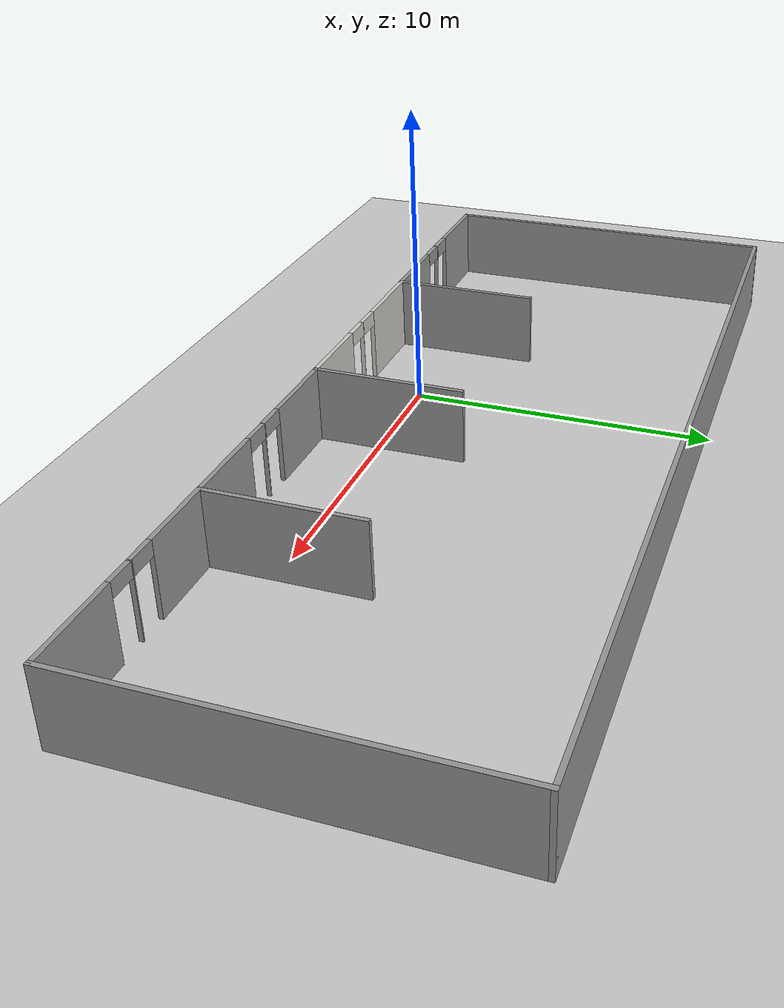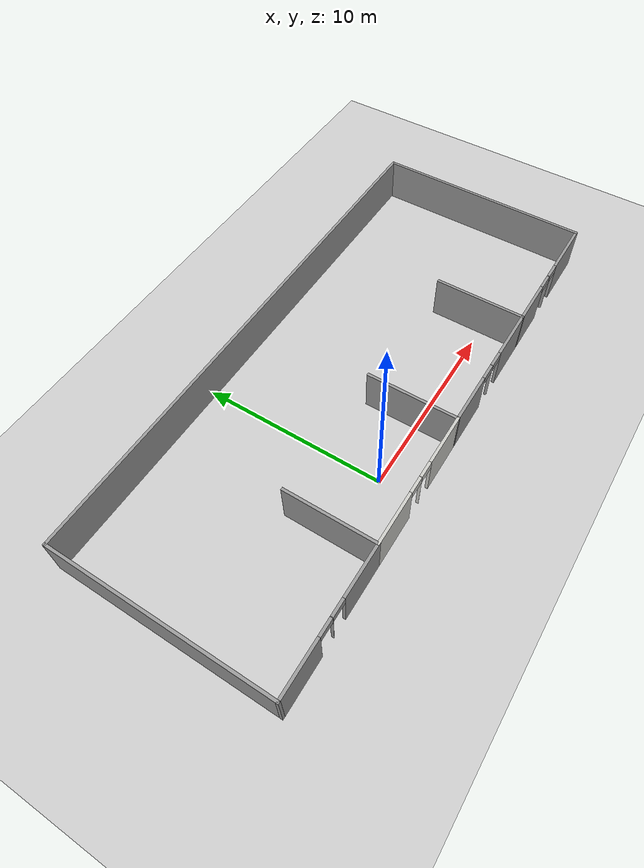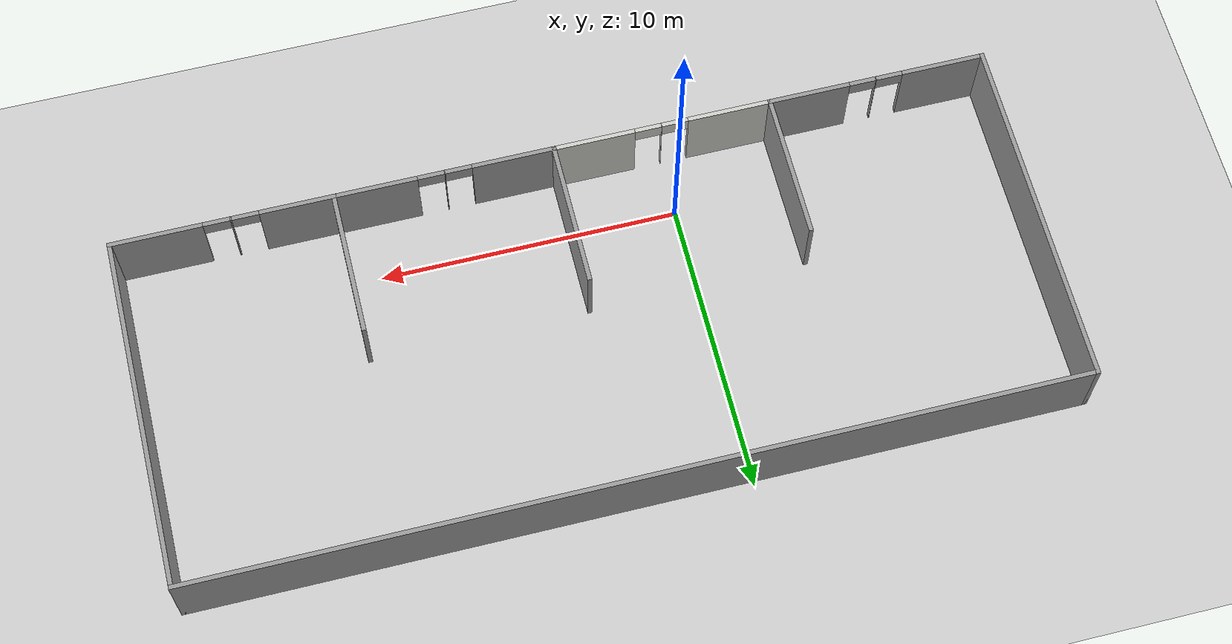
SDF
<sdf version="1.7">
 <world name="default">
  <model name="ground_plane">
   <static>1</static>
   <link name="link">
    <collision name="collision">
     <geometry><plane><normal>0 0 1</normal><size>100 100</size></plane></geometry>
     <surface><friction><ode><mu>100</mu><mu2>50</mu2></ode></friction></surface>
    </collision>
    <visual name="visual">
     <cast_shadows>0</cast_shadows>
     <geometry><plane><normal>0 0 1</normal><size>100 100</size></plane></geometry>
     <material>
      <script><uri>file://media/materials/scripts/gazebo.material</uri><name>Gazebo/Grey</name></script>
     </material>
    </visual>
   </link>
  </model>
  <model name="gf_simulation">
   <pose>3.62768 3.86036 0 0 -0 0</pose>
   <link name="Wall_1">
    <pose>-3.675 -5.925 0 0 -0 0</pose>
    <visual name="Wall_1_Visual_0">
     <pose>-2.30795 0 1.25 0 -0 0</pose>
     <geometry><box><size>2.8841 0.15 2.5</size></box></geometry>
     <material>
      <script><uri>file://media/materials/scripts/gazebo.material</uri><name>Gazebo/CeilingTiled</name></script>
      <ambient>1 1 1 1</ambient>
     </material>
     <meta><layer>0</layer></meta>
    </visual>
    <collision name="Wall_1_Collision_0">
     <geometry><box><size>2.8841 0.15 2.5</size></box></geometry>
     <pose>-2.30795 0 1.25 0 -0 0</pose>
    </collision>
    <visual name="Wall_1_Visual_1">
     <pose>0.038466 0 1.25 0 -0 0</pose>
     <geometry><box><size>0.008729 0.15 2.5</size></box></geometry>
     <material>
      <script><uri>file://media/materials/scripts/gazebo.material</uri><name>Gazebo/CeilingTiled</name></script>
      <ambient>1 1 1 1</ambient>
     </material>
     <meta><layer>0</layer></meta>
    </visual>
    <collision name="Wall_1_Collision_1">
     <geometry><box><size>0.008729 0.15 2.5</size></box></geometry>
     <pose>0.038466 0 1.25 0 -0 0</pose>
    </collision>
    <visual name="Wall_1_Visual_2">
     <pose>2.34641 0 1.25 0 -0 0</pose>
     <geometry><box><size>2.80717 0.15 2.5</size></box></geometry>
     <material>
      <script><uri>file://media/materials/scripts/gazebo.material</uri><name>Gazebo/CeilingTiled</name></script>
      <ambient>1 1 1 1</ambient>
     </material>
     <meta><layer>0</layer></meta>
    </visual>
    <collision name="Wall_1_Collision_2">
     <geometry><box><size>2.80717 0.15 2.5</size></box></geometry>
     <pose>2.34641 0 1.25 0 -0 0</pose>
    </collision>
    <visual name="Wall_1_Visual_3">
     <pose>-0.415899 0 2.25 0 -0 0</pose>
     <geometry><box><size>0.9 0.15 0.5</size></box></geometry>
     <material>
      <script><uri>file://media/materials/scripts/gazebo.material</uri><name>Gazebo/CeilingTiled</name></script>
      <ambient>1 1 1 1</ambient>
     </material>
     <meta><layer>0</layer></meta>
    </visual>
    <collision name="Wall_1_Collision_3">
     <geometry><box><size>0.9 0.15 0.5</size></box></geometry>
     <pose>-0.415899 0 2.25 0 -0 0</pose>
    </collision>
    <visual name="Wall_1_Visual_4">
     <pose>0.49283 0 2.25 0 -0 0</pose>
     <geometry><box><size>0.9 0.15 0.5</size></box></geometry>
     <material>
      <script><uri>file://media/materials/scripts/gazebo.material</uri><name>Gazebo/CeilingTiled</name></script>
      <ambient>1 1 1 1</ambient>
     </material>
     <meta><layer>0</layer></meta>
    </visual>
    <collision name="Wall_1_Collision_4">
     <geometry><box><size>0.9 0.15 0.5</size></box></geometry>
     <pose>0.49283 0 2.25 0 -0 0</pose>
    </collision>
   </link>
   <link name="Wall_10">
    <pose>3.675 -5.925 0 0 -0 0</pose>
    <visual name="Wall_10_Visual_0">
     <pose>-2.33475 0 1.25 0 -0 0</pose>
     <geometry><box><size>2.83049 0.15 2.5</size></box></geometry>
     <material>
      <script><uri>file://media/materials/scripts/gazebo.material</uri><name>Gazebo/Grey</name></script>
      <ambient>1 1 1 1</ambient>
     </material>
     <meta><layer>0</layer></meta>
    </visual>
    <collision name="Wall_10_Collision_0">
     <geometry><box><size>2.83049 0.15 2.5</size></box></geometry>
     <pose>-2.33475 0 1.25 0 -0 0</pose>
    </collision>
    <visual name="Wall_10_Visual_1">
     <pose>-0.009967 0 1.25 0 -0 0</pose>
     <geometry><box><size>0.019079 0.15 2.5</size></box></geometry>
     <material>
      <script><uri>file://media/materials/scripts/gazebo.material</uri><name>Gazebo/Grey</name></script>
      <ambient>1 1 1 1</ambient>
     </material>
     <meta><layer>0</layer></meta>
    </visual>
    <collision name="Wall_10_Collision_1">
     <geometry><box><size>0.019079 0.15 2.5</size></box></geometry>
     <pose>-0.009967 0 1.25 0 -0 0</pose>
    </collision>
    <visual name="Wall_10_Visual_2">
     <pose>2.32479 0 1.25 0 -0 0</pose>
     <geometry><box><size>2.85043 0.15 2.5</size></box></geometry>
     <material>
      <script><uri>file://media/materials/scripts/gazebo.material</uri><name>Gazebo/Grey</name></script>
      <ambient>1 1 1 1</ambient>
     </material>
     <meta><layer>0</layer></meta>
    </visual>
    <collision name="Wall_10_Collision_2">
     <geometry><box><size>2.85043 0.15 2.5</size></box></geometry>
     <pose>2.32479 0 1.25 0 -0 0</pose>
    </collision>
    <visual name="Wall_10_Visual_3">
     <pose>-0.469506 0 2.25 0 -0 0</pose>
     <geometry><box><size>0.9 0.15 0.5</size></box></geometry>
     <material>
      <script><uri>file://media/materials/scripts/gazebo.material</uri><name>Gazebo/Grey</name></script>
      <ambient>1 1 1 1</ambient>
     </material>
     <meta><layer>0</layer></meta>
    </visual>
    <collision name="Wall_10_Collision_3">
     <geometry><box><size>0.9 0.15 0.5</size></box></geometry>
     <pose>-0.469506 0 2.25 0 -0 0</pose>
    </collision>
    <visual name="Wall_10_Visual_4">
     <pose>0.449573 0 2.25 0 -0 0</pose>
     <geometry><box><size>0.9 0.15 0.5</size></box></geometry>
     <material>
      <script><uri>file://media/materials/scripts/gazebo.material</uri><name>Gazebo/Grey</name></script>
      <ambient>1 1 1 1</ambient>
     </material>
     <meta><layer>0</layer></meta>
    </visual>
    <collision name="Wall_10_Collision_4">
     <geometry><box><size>0.9 0.15 0.5</size></box></geometry>
     <pose>0.449573 0 2.25 0 -0 0</pose>
    </collision>
   </link>
   <link name="Wall_13">
    <collision name="Wall_13_Collision">
     <geometry><box><size>5 0.15 2.5</size></box></geometry>
     <pose>0 0 1.25 0 -0 0</pose>
    </collision>
    <visual name="Wall_13_Visual">
     <pose>0 0 1.25 0 -0 0</pose>
     <geometry><box><size>5 0.15 2.5</size></box></geometry>
     <material>
      <script><uri>file://media/materials/scripts/gazebo.material</uri><name>Gazebo/Grey</name></script>
      <ambient>1 1 1 1</ambient>
     </material>
     <meta><layer>0</layer></meta>
    </visual>
    <pose>7.35 -3.5 0 0 -0 1.5708</pose>
   </link>
   <link name="Wall_16">
    <pose>11.025 -5.925 0 0 -0 0</pose>
    <visual name="Wall_16_Visual_0">
     <pose>-2.47856 0 1.25 0 -0 0</pose>
     <geometry><box><size>2.54289 0.15 2.5</size></box></geometry>
     <material>
      <script><uri>file://media/materials/scripts/gazebo.material</uri><name>Gazebo/Grey</name></script>
      <ambient>1 1 1 1</ambient>
     </material>
     <meta><layer>0</layer></meta>
    </visual>
    <collision name="Wall_16_Collision_0">
     <geometry><box><size>2.54289 0.15 2.5</size></box></geometry>
     <pose>-2.47856 0 1.25 0 -0 0</pose>
    </collision>
    <visual name="Wall_16_Visual_1">
     <pose>-0.285478 0 1.25 0 -0 0</pose>
     <geometry><box><size>0.043266 0.15 2.5</size></box></geometry>
     <material>
      <script><uri>file://media/materials/scripts/gazebo.material</uri><name>Gazebo/Grey</name></script>
      <ambient>1 1 1 1</ambient>
     </material>
     <meta><layer>0</layer></meta>
    </visual>
    <collision name="Wall_16_Collision_1">
     <geometry><box><size>0.043266 0.15 2.5</size></box></geometry>
     <pose>-0.285478 0 1.25 0 -0 0</pose>
    </collision>
    <visual name="Wall_16_Visual_2">
     <pose>2.19308 0 1.25 0 -0 0</pose>
     <geometry><box><size>3.11384 0.15 2.5</size></box></geometry>
     <material>
      <script><uri>file://media/materials/scripts/gazebo.material</uri><name>Gazebo/Grey</name></script>
      <ambient>1 1 1 1</ambient>
     </material>
     <meta><layer>0</layer></meta>
    </visual>
    <collision name="Wall_16_Collision_2">
     <geometry><box><size>3.11384 0.15 2.5</size></box></geometry>
     <pose>2.19308 0 1.25 0 -0 0</pose>
    </collision>
    <visual name="Wall_16_Visual_3">
     <pose>-0.757111 0 2.25 0 -0 0</pose>
     <geometry><box><size>0.9 0.15 0.5</size></box></geometry>
     <material>
      <script><uri>file://media/materials/scripts/gazebo.material</uri><name>Gazebo/Grey</name></script>
      <ambient>1 1 1 1</ambient>
     </material>
     <meta><layer>0</layer></meta>
    </visual>
    <collision name="Wall_16_Collision_3">
     <geometry><box><size>0.9 0.15 0.5</size></box></geometry>
     <pose>-0.757111 0 2.25 0 -0 0</pose>
    </collision>
    <visual name="Wall_16_Visual_4">
     <pose>0.186155 0 2.25 0 -0 0</pose>
     <geometry><box><size>0.9 0.15 0.5</size></box></geometry>
     <material>
      <script><uri>file://media/materials/scripts/gazebo.material</uri><name>Gazebo/Grey</name></script>
      <ambient>1 1 1 1</ambient>
     </material>
     <meta><layer>0</layer></meta>
    </visual>
    <collision name="Wall_16_Collision_4">
     <geometry><box><size>0.9 0.15 0.5</size></box></geometry>
     <pose>0.186155 0 2.25 0 -0 0</pose>
    </collision>
   </link>
   <link name="Wall_20">
    <collision name="Wall_20_Collision">
     <geometry><box><size>12 0.15 2.5</size></box></geometry>
     <pose>0 0 1.25 0 -0 0</pose>
    </collision>
    <visual name="Wall_20_Visual">
     <pose>0 0 1.25 0 -0 0</pose>
     <geometry><box><size>12 0.15 2.5</size></box></geometry>
     <material>
      <script><uri>file://media/materials/scripts/gazebo.material</uri><name>Gazebo/Grey</name></script>
      <ambient>1 1 1 1</ambient>
     </material>
     <meta><layer>0</layer></meta>
    </visual>
    <pose>14.7 0 0 0 -0 1.5708</pose>
   </link>
   <link name="Wall_22">
    <pose>-11.025 -5.925 0 0 -0 3.14159</pose>
    <visual name="Wall_22_Visual_0">
     <pose>-2.34634 0 1.25 0 -0 0</pose>
     <geometry><box><size>2.80732 0.15 2.5</size></box></geometry>
     <material>
      <script><uri>file://media/materials/scripts/gazebo.material</uri><name>Gazebo/Grey</name></script>
      <ambient>1 1 1 1</ambient>
     </material>
     <meta><layer>0</layer></meta>
    </visual>
    <collision name="Wall_22_Collision_0">
     <geometry><box><size>2.80732 0.15 2.5</size></box></geometry>
     <pose>-2.34634 0 1.25 0 -0 0</pose>
    </collision>
    <visual name="Wall_22_Visual_1">
     <pose>-0.033144 0 1.25 0 -0 0</pose>
     <geometry><box><size>0.019079 0.15 2.5</size></box></geometry>
     <material>
      <script><uri>file://media/materials/scripts/gazebo.material</uri><name>Gazebo/Grey</name></script>
      <ambient>1 1 1 1</ambient>
     </material>
     <meta><layer>0</layer></meta>
    </visual>
    <collision name="Wall_22_Collision_1">
     <geometry><box><size>0.019079 0.15 2.5</size></box></geometry>
     <pose>-0.033144 0 1.25 0 -0 0</pose>
    </collision>
    <visual name="Wall_22_Visual_2">
     <pose>2.3132 0 1.25 0 -0 0</pose>
     <geometry><box><size>2.8736 0.15 2.5</size></box></geometry>
     <material>
      <script><uri>file://media/materials/scripts/gazebo.material</uri><name>Gazebo/Grey</name></script>
      <ambient>1 1 1 1</ambient>
     </material>
     <meta><layer>0</layer></meta>
    </visual>
    <collision name="Wall_22_Collision_2">
     <geometry><box><size>2.8736 0.15 2.5</size></box></geometry>
     <pose>2.3132 0 1.25 0 -0 0</pose>
    </collision>
    <visual name="Wall_22_Visual_3">
     <pose>-0.492683 0 2.25 0 -0 0</pose>
     <geometry><box><size>0.9 0.15 0.5</size></box></geometry>
     <material>
      <script><uri>file://media/materials/scripts/gazebo.material</uri><name>Gazebo/Grey</name></script>
      <ambient>1 1 1 1</ambient>
     </material>
     <meta><layer>0</layer></meta>
    </visual>
    <collision name="Wall_22_Collision_3">
     <geometry><box><size>0.9 0.15 0.5</size></box></geometry>
     <pose>-0.492683 0 2.25 0 -0 0</pose>
    </collision>
    <visual name="Wall_22_Visual_4">
     <pose>0.426395 0 2.25 0 -0 0</pose>
     <geometry><box><size>0.9 0.15 0.5</size></box></geometry>
     <material>
      <script><uri>file://media/materials/scripts/gazebo.material</uri><name>Gazebo/Grey</name></script>
      <ambient>1 1 1 1</ambient>
     </material>
     <meta><layer>0</layer></meta>
    </visual>
    <collision name="Wall_22_Collision_4">
     <geometry><box><size>0.9 0.15 0.5</size></box></geometry>
     <pose>0.426395 0 2.25 0 -0 0</pose>
    </collision>
   </link>
   <link name="Wall_23">
    <collision name="Wall_23_Collision">
     <geometry><box><size>12 0.15 2.5</size></box></geometry>
     <pose>0 0 1.25 0 -0 0</pose>
    </collision>
    <visual name="Wall_23_Visual">
     <pose>0 0 1.25 0 -0 0</pose>
     <geometry><box><size>12 0.15 2.5</size></box></geometry>
     <material>
      <script><uri>file://media/materials/scripts/gazebo.material</uri><name>Gazebo/Grey</name></script>
      <ambient>1 1 1 1</ambient>
     </material>
     <meta><layer>0</layer></meta>
    </visual>
    <pose>-14.7 0 0 0 -0 1.5708</pose>
   </link>
   <link name="Wall_24">
    <collision name="Wall_24_Collision">
     <geometry><box><size>29.55 0.15 2.5</size></box></geometry>
     <pose>0 0 1.25 0 -0 0</pose>
    </collision>
    <visual name="Wall_24_Visual">
     <pose>0 0 1.25 0 -0 0</pose>
     <geometry><box><size>29.55 0.15 2.5</size></box></geometry>
     <material>
      <script><uri>file://media/materials/scripts/gazebo.material</uri><name>Gazebo/Grey</name></script>
      <ambient>1 1 1 1</ambient>
     </material>
     <meta><layer>0</layer></meta>
    </visual>
    <pose>0 5.925 0 0 -0 0</pose>
   </link>
   <link name="Wall_3">
    <collision name="Wall_3_Collision">
     <geometry><box><size>5 0.15 2.5</size></box></geometry>
     <pose>0 0 1.25 0 -0 0</pose>
    </collision>
    <visual name="Wall_3_Visual">
     <pose>0 0 1.25 0 -0 0</pose>
     <geometry><box><size>5 0.15 2.5</size></box></geometry>
     <material>
      <script><uri>file://media/materials/scripts/gazebo.material</uri><name>Gazebo/Grey</name></script>
      <ambient>1 1 1 1</ambient>
     </material>
     <meta><layer>0</layer></meta>
    </visual>
    <pose>0 -3.5 0 0 -0 1.5708</pose>
   </link>
   <link name="Wall_7">
    <collision name="Wall_7_Collision">
     <geometry><box><size>5 0.15 2.5</size></box></geometry>
     <pose>0 0 1.25 0 -0 0</pose>
    </collision>
    <visual name="Wall_7_Visual">
     <pose>0 0 1.25 0 -0 0</pose>
     <geometry><box><size>5 0.15 2.5</size></box></geometry>
     <material>
      <script><uri>file://media/materials/scripts/gazebo.material</uri><name>Gazebo/Grey</name></script>
      <ambient>1 1 1 1</ambient>
     </material>
     <meta><layer>0</layer></meta>
    </visual>
    <pose>-7.35 -3.5 0 0 -0 1.5708</pose>
   </link>
   <static>1</static>
  </model>
 </world>
</sdf>
